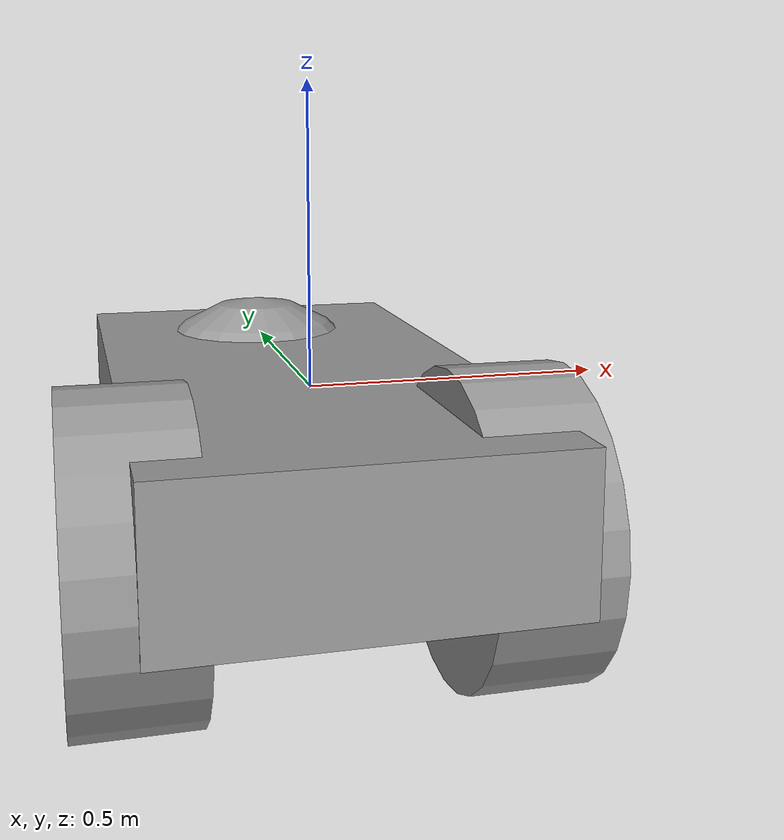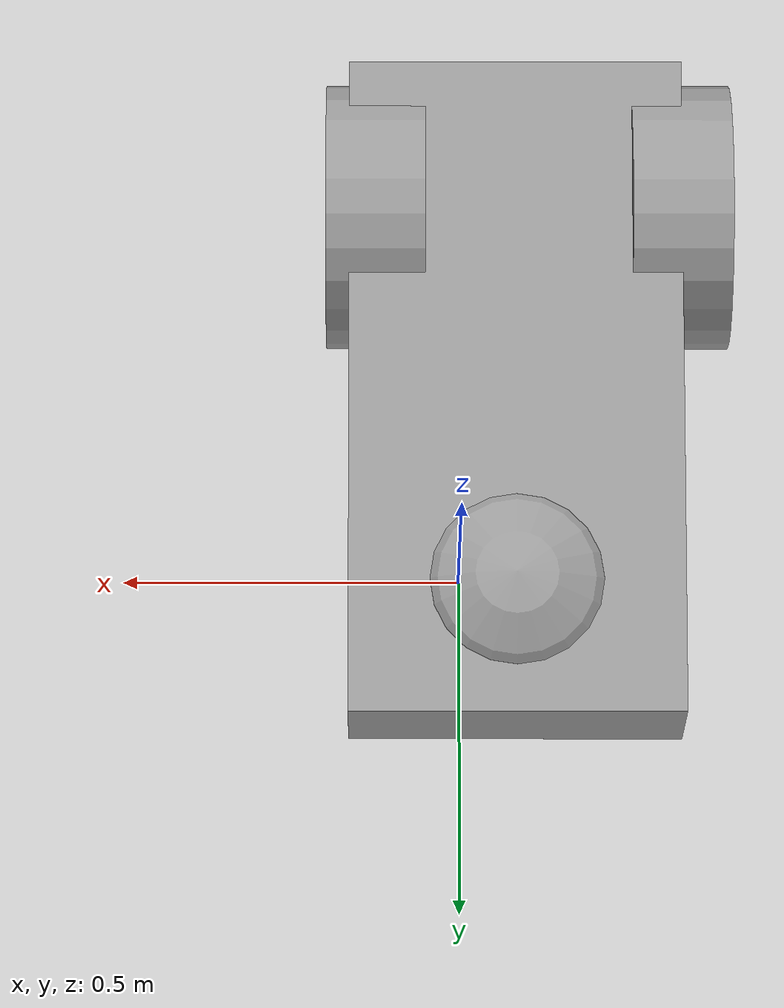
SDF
<?xml version='1.0'?>
<sdf version='1.7'>
  <model name='roboBuddy'>
    <link name='link_1'>
      <inertial>
        <mass>1</mass>
        <inertia>
          <ixx>0.166667</ixx>
          <ixy>0</ixy>
          <ixz>0</ixz>
          <iyy>0.166667</iyy>
          <iyz>0</iyz>
          <izz>0.166667</izz>
        </inertia>
        <pose>0 0 0 0 -0 0</pose>
      </inertial>
      <pose>-0.085264 -0.284637 -0 0 -0 0</pose>
      <gravity>1</gravity>
      <self_collide>0</self_collide>
      <kinematic>0</kinematic>
      <enable_wind>0</enable_wind>
      <visual name='visual'>
        <pose>0 0 0 0 -0 0</pose>
        <geometry>
          <box>
            <size>0.5 1 0.2</size>
          </box>
        </geometry>
        <material>
          <lighting>1</lighting>
          <script>
            <uri>file://media/materials/scripts/gazebo.material</uri>
            <name>Gazebo/Grey</name>
          </script>
          <shader type='pixel'>
            <normal_map>__default__</normal_map>
          </shader>
          <ambient>0.3 0.3 0.3 1</ambient>
          <diffuse>0.7 0.7 0.7 1</diffuse>
          <specular>0.01 0.01 0.01 1</specular>
          <emissive>0 0 0 1</emissive>
        </material>
        <transparency>0</transparency>
        <cast_shadows>1</cast_shadows>
      </visual>
      <collision name='collision'>
        <laser_retro>0</laser_retro>
        <max_contacts>10</max_contacts>
        <pose>0 0 0 0 -0 0</pose>
        <geometry>
          <box>
            <size>0.5 1 0.2</size>
          </box>
        </geometry>
        <surface>
          <friction>
            <ode>
              <mu>1</mu>
              <mu2>1</mu2>
              <fdir1>0 0 0</fdir1>
              <slip1>0</slip1>
              <slip2>0</slip2>
            </ode>
            <torsional>
              <coefficient>1</coefficient>
              <patch_radius>0</patch_radius>
              <surface_radius>0</surface_radius>
              <use_patch_radius>1</use_patch_radius>
              <ode>
                <slip>0</slip>
              </ode>
            </torsional>
          </friction>
          <bounce>
            <restitution_coefficient>0</restitution_coefficient>
            <threshold>1e+06</threshold>
          </bounce>
          <contact>
            <collide_without_contact>0</collide_without_contact>
            <collide_without_contact_bitmask>1</collide_without_contact_bitmask>
            <collide_bitmask>1</collide_bitmask>
            <ode>
              <soft_cfm>0</soft_cfm>
              <soft_erp>0.2</soft_erp>
              <kp>1e+13</kp>
              <kd>1</kd>
              <max_vel>0.01</max_vel>
              <min_depth>0</min_depth>
            </ode>
            <bullet>
              <split_impulse>1</split_impulse>
              <split_impulse_penetration_threshold>-0.01</split_impulse_penetration_threshold>
              <soft_cfm>0</soft_cfm>
              <soft_erp>0.2</soft_erp>
              <kp>1e+13</kp>
              <kd>1</kd>
            </bullet>
          </contact>
        </surface>
      </collision>
    </link>
    <link name='link_3'>
      <inertial>
        <mass>1</mass>
        <inertia>
          <ixx>0.145833</ixx>
          <ixy>0</ixy>
          <ixz>0</ixz>
          <iyy>0.145833</iyy>
          <iyz>0</iyz>
          <izz>0.125</izz>
        </inertia>
        <pose>0 0 0 0 -0 0</pose>
      </inertial>
      <pose>0.124735 -0.584637 -0.050001 0 1.57079 0</pose>
      <gravity>1</gravity>
      <self_collide>0</self_collide>
      <kinematic>0</kinematic>
      <enable_wind>0</enable_wind>
      <visual name='visual'>
        <pose>0 0 0 0 -0 0</pose>
        <geometry>
          <cylinder>
            <radius>0.2</radius>
            <length>0.15</length>
          </cylinder>
        </geometry>
        <material>
          <lighting>1</lighting>
          <script>
            <uri>file://media/materials/scripts/gazebo.material</uri>
            <name>Gazebo/Grey</name>
          </script>
          <shader type='pixel'>
            <normal_map>__default__</normal_map>
          </shader>
          <ambient>0.3 0.3 0.3 1</ambient>
          <diffuse>0.7 0.7 0.7 1</diffuse>
          <specular>0.01 0.01 0.01 1</specular>
          <emissive>0 0 0 1</emissive>
        </material>
        <transparency>0</transparency>
        <cast_shadows>1</cast_shadows>
      </visual>
      <collision name='collision'>
        <laser_retro>0</laser_retro>
        <max_contacts>10</max_contacts>
        <pose>0 0 0 0 -0 0</pose>
        <geometry>
          <cylinder>
            <radius>0.2</radius>
            <length>0.15</length>
          </cylinder>
        </geometry>
        <surface>
          <friction>
            <ode>
              <mu>1</mu>
              <mu2>1</mu2>
              <fdir1>0 0 0</fdir1>
              <slip1>0</slip1>
              <slip2>0</slip2>
            </ode>
            <torsional>
              <coefficient>1</coefficient>
              <patch_radius>0</patch_radius>
              <surface_radius>0</surface_radius>
              <use_patch_radius>1</use_patch_radius>
              <ode>
                <slip>0</slip>
              </ode>
            </torsional>
          </friction>
          <bounce>
            <restitution_coefficient>0</restitution_coefficient>
            <threshold>1e+06</threshold>
          </bounce>
          <contact>
            <collide_without_contact>0</collide_without_contact>
            <collide_without_contact_bitmask>1</collide_without_contact_bitmask>
            <collide_bitmask>1</collide_bitmask>
            <ode>
              <soft_cfm>0</soft_cfm>
              <soft_erp>0.2</soft_erp>
              <kp>1e+13</kp>
              <kd>1</kd>
              <max_vel>0.01</max_vel>
              <min_depth>0</min_depth>
            </ode>
            <bullet>
              <split_impulse>1</split_impulse>
              <split_impulse_penetration_threshold>-0.01</split_impulse_penetration_threshold>
              <soft_cfm>0</soft_cfm>
              <soft_erp>0.2</soft_erp>
              <kp>1e+13</kp>
              <kd>1</kd>
            </bullet>
          </contact>
        </surface>
      </collision>
    </link>
    <link name='link_3_clone'>
      <inertial>
        <mass>1</mass>
        <inertia>
          <ixx>0.145833</ixx>
          <ixy>0</ixy>
          <ixz>0</ixz>
          <iyy>0.145833</iyy>
          <iyz>0</iyz>
          <izz>0.125</izz>
        </inertia>
        <pose>0 0 0 0 -0 0</pose>
      </inertial>
      <pose>-0.335263 -0.584637 -0.050001 0.001751 1.57079 0.001751</pose>
      <gravity>1</gravity>
      <self_collide>0</self_collide>
      <kinematic>0</kinematic>
      <enable_wind>0</enable_wind>
      <visual name='visual'>
        <pose>0 0 0 0 -0 0</pose>
        <geometry>
          <cylinder>
            <radius>0.2</radius>
            <length>0.15</length>
          </cylinder>
        </geometry>
        <material>
          <lighting>1</lighting>
          <script>
            <uri>file://media/materials/scripts/gazebo.material</uri>
            <name>Gazebo/Grey</name>
          </script>
          <shader type='pixel'>
            <normal_map>__default__</normal_map>
          </shader>
          <ambient>0.3 0.3 0.3 1</ambient>
          <diffuse>0.7 0.7 0.7 1</diffuse>
          <specular>0.01 0.01 0.01 1</specular>
          <emissive>0 0 0 1</emissive>
        </material>
        <transparency>0</transparency>
        <cast_shadows>1</cast_shadows>
      </visual>
      <collision name='collision'>
        <laser_retro>0</laser_retro>
        <max_contacts>10</max_contacts>
        <pose>0 0 0 0 -0 0</pose>
        <geometry>
          <cylinder>
            <radius>0.2</radius>
            <length>0.15</length>
          </cylinder>
        </geometry>
        <surface>
          <friction>
            <ode>
              <mu>1</mu>
              <mu2>1</mu2>
              <fdir1>0 0 0</fdir1>
              <slip1>0</slip1>
              <slip2>0</slip2>
            </ode>
            <torsional>
              <coefficient>1</coefficient>
              <patch_radius>0</patch_radius>
              <surface_radius>0</surface_radius>
              <use_patch_radius>1</use_patch_radius>
              <ode>
                <slip>0</slip>
              </ode>
            </torsional>
          </friction>
          <bounce>
            <restitution_coefficient>0</restitution_coefficient>
            <threshold>1e+06</threshold>
          </bounce>
          <contact>
            <collide_without_contact>0</collide_without_contact>
            <collide_without_contact_bitmask>1</collide_without_contact_bitmask>
            <collide_bitmask>1</collide_bitmask>
            <ode>
              <soft_cfm>0</soft_cfm>
              <soft_erp>0.2</soft_erp>
              <kp>1e+13</kp>
              <kd>1</kd>
              <max_vel>0.01</max_vel>
              <min_depth>0</min_depth>
            </ode>
            <bullet>
              <split_impulse>1</split_impulse>
              <split_impulse_penetration_threshold>-0.01</split_impulse_penetration_threshold>
              <soft_cfm>0</soft_cfm>
              <soft_erp>0.2</soft_erp>
              <kp>1e+13</kp>
              <kd>1</kd>
            </bullet>
          </contact>
        </surface>
      </collision>
    </link>
    <link name='link_4'>
      <inertial>
        <mass>1</mass>
        <inertia>
          <ixx>0.1</ixx>
          <ixy>0</ixy>
          <ixz>0</ixz>
          <iyy>0.1</iyy>
          <iyz>0</iyz>
          <izz>0.1</izz>
        </inertia>
        <pose>0 0 0 0 -0 0</pose>
      </inertial>
      <pose>-0.085264 0.015363 -0.05 0 -0 0</pose>
      <gravity>1</gravity>
      <self_collide>0</self_collide>
      <kinematic>0</kinematic>
      <enable_wind>0</enable_wind>
      <visual name='visual'>
        <pose>0 0 0 0 -0 0</pose>
        <geometry>
          <sphere>
            <radius>0.2</radius>
          </sphere>
        </geometry>
        <material>
          <lighting>1</lighting>
          <script>
            <uri>file://media/materials/scripts/gazebo.material</uri>
            <name>Gazebo/Grey</name>
          </script>
          <shader type='pixel'>
            <normal_map>__default__</normal_map>
          </shader>
          <ambient>0.3 0.3 0.3 1</ambient>
          <diffuse>0.7 0.7 0.7 1</diffuse>
          <specular>0.01 0.01 0.01 1</specular>
          <emissive>0 0 0 1</emissive>
        </material>
        <transparency>0</transparency>
        <cast_shadows>1</cast_shadows>
      </visual>
      <collision name='collision'>
        <laser_retro>0</laser_retro>
        <max_contacts>10</max_contacts>
        <pose>0 0 0 0 -0 0</pose>
        <geometry>
          <sphere>
            <radius>0.2</radius>
          </sphere>
        </geometry>
        <surface>
          <friction>
            <ode>
              <mu>1</mu>
              <mu2>1</mu2>
              <fdir1>0 0 0</fdir1>
              <slip1>0</slip1>
              <slip2>0</slip2>
            </ode>
            <torsional>
              <coefficient>1</coefficient>
              <patch_radius>0</patch_radius>
              <surface_radius>0</surface_radius>
              <use_patch_radius>1</use_patch_radius>
              <ode>
                <slip>0</slip>
              </ode>
            </torsional>
          </friction>
          <bounce>
            <restitution_coefficient>0</restitution_coefficient>
            <threshold>1e+06</threshold>
          </bounce>
          <contact>
            <collide_without_contact>0</collide_without_contact>
            <collide_without_contact_bitmask>1</collide_without_contact_bitmask>
            <collide_bitmask>1</collide_bitmask>
            <ode>
              <soft_cfm>0</soft_cfm>
              <soft_erp>0.2</soft_erp>
              <kp>1e+13</kp>
              <kd>1</kd>
              <max_vel>0.01</max_vel>
              <min_depth>0</min_depth>
            </ode>
            <bullet>
              <split_impulse>1</split_impulse>
              <split_impulse_penetration_threshold>-0.01</split_impulse_penetration_threshold>
              <soft_cfm>0</soft_cfm>
              <soft_erp>0.2</soft_erp>
              <kp>1e+13</kp>
              <kd>1</kd>
            </bullet>
          </contact>
        </surface>
      </collision>
    </link>
    <joint name='link_1_JOINT_2' type='revolute'>
      <parent>link_1</parent>
      <child>link_3</child>
      <pose>0 0 0 0 -0 0</pose>
      <axis>
        <xyz>1 0 0</xyz>
        <limit>
          <lower>-1.79769e+308</lower>
          <upper>1.79769e+308</upper>
          <effort>-1</effort>
          <velocity>-1</velocity>
        </limit>
        <dynamics>
          <spring_reference>0</spring_reference>
          <spring_stiffness>0</spring_stiffness>
          <damping>0</damping>
        </dynamics>
      </axis>
      <physics>
        <ode>
          <limit>
            <cfm>0</cfm>
            <erp>0.2</erp>
          </limit>
          <suspension>
            <cfm>0</cfm>
            <erp>0.2</erp>
          </suspension>
        </ode>
      </physics>
    </joint>
    <joint name='link_1_JOINT_3' type='revolute'>
      <parent>link_1</parent>
      <child>link_3_clone</child>
      <pose>0 0 0 0 -0 0</pose>
      <axis>
        <xyz>1 0 0</xyz>
        <limit>
          <lower>-1.79769e+308</lower>
          <upper>1.79769e+308</upper>
          <effort>-1</effort>
          <velocity>-1</velocity>
        </limit>
        <dynamics>
          <spring_reference>0</spring_reference>
          <spring_stiffness>0</spring_stiffness>
          <damping>0</damping>
        </dynamics>
      </axis>
      <physics>
        <ode>
          <limit>
            <cfm>0</cfm>
            <erp>0.2</erp>
          </limit>
          <suspension>
            <cfm>0</cfm>
            <erp>0.2</erp>
          </suspension>
        </ode>
      </physics>
    </joint>
    <joint name='link_1_JOINT_4' type='revolute'>
      <parent>link_1</parent>
      <child>link_4</child>
      <pose>0 0 0 0 -0 0</pose>
      <axis>
        <xyz>1 0 0</xyz>
        <limit>
          <lower>-1.79769e+308</lower>
          <upper>1.79769e+308</upper>
          <effort>-1</effort>
          <velocity>-1</velocity>
        </limit>
        <dynamics>
          <spring_reference>0</spring_reference>
          <spring_stiffness>0</spring_stiffness>
          <damping>0</damping>
        </dynamics>
      </axis>
      <physics>
        <ode>
          <limit>
            <cfm>0</cfm>
            <erp>0.2</erp>
          </limit>
          <suspension>
            <cfm>0</cfm>
            <erp>0.2</erp>
          </suspension>
        </ode>
      </physics>
    </joint>
    <static>0</static>
    <allow_auto_disable>1</allow_auto_disable>
  </model>
</sdf>
